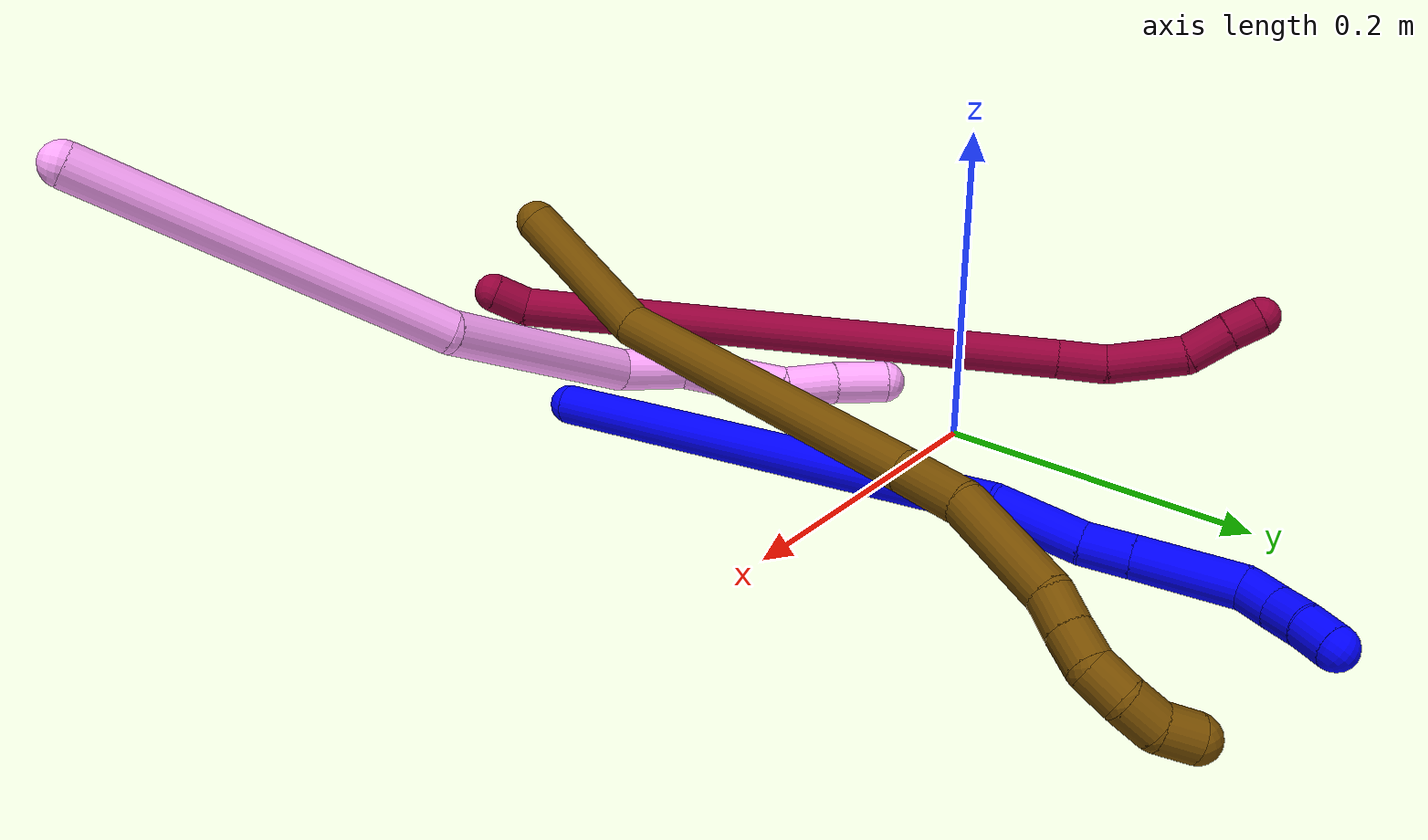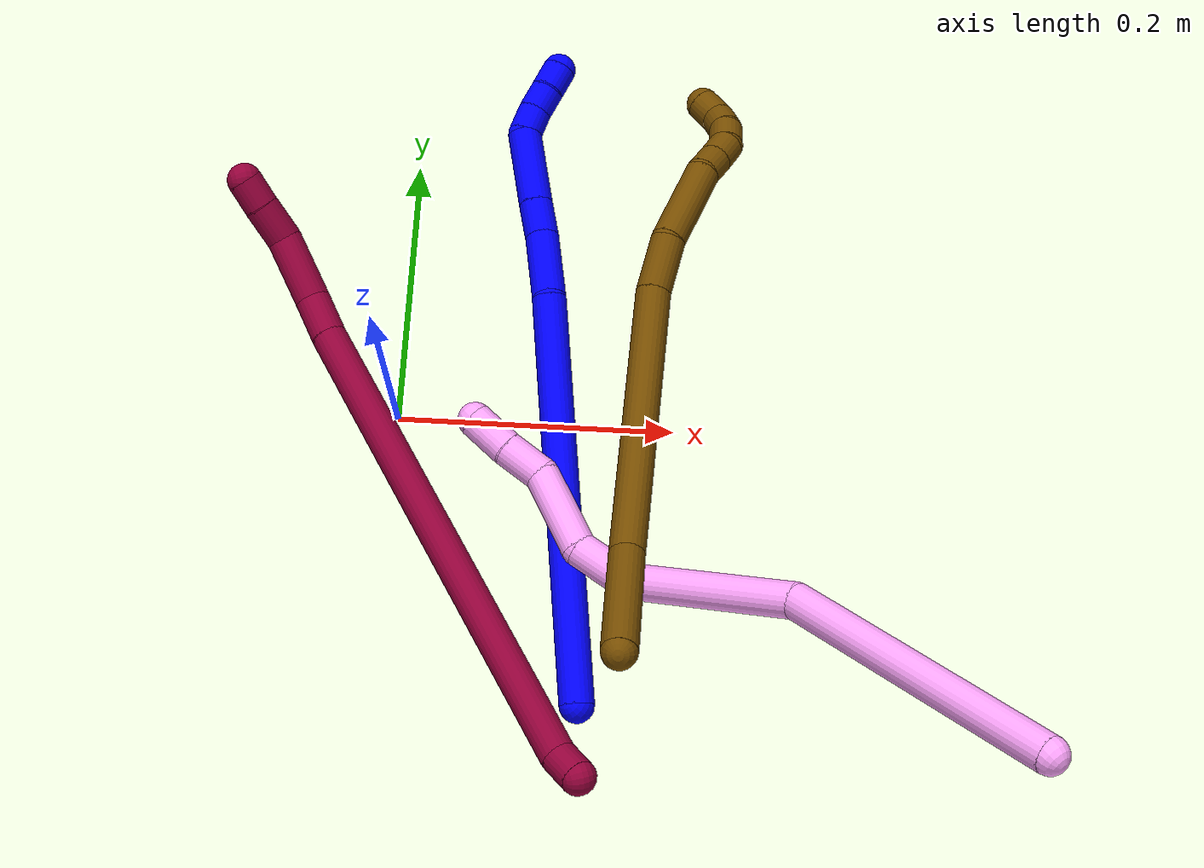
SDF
<sdf version="1.7">
 <world name="default">
  <model name="1">
   <static>0</static>
   <link name="1">
    <collision name="collision-cylinder-e_1_1_4">
     <pose>-0.010685 0.138524 0.053815 -1.20025 -0.071778 0.049131</pose>
     <geometry><cylinder><radius>0.0125</radius><length>0.297988</length></cylinder></geometry>
     <surface>
      <friction><ode><mu>1.16</mu><mu2>1.16</mu2><slip1>0</slip1><slip2>0</slip2></ode></friction>
      <contact><ode><kp>1e+06</kp><kd>1</kd><max_vel>0</max_vel><min_depth>0.001</min_depth></ode></contact>
     </surface>
    </collision>
    <visual name="visual-cylinder-e_1_1_4">
     <pose>-0.010685 0.138524 0.053815 -1.20025 -0.071778 0.049131</pose>
     <geometry><cylinder><radius>0.0125</radius><length>0.297988</length></cylinder></geometry>
     <material><ambient>0 0 1 1</ambient></material>
    </visual>
    <collision name="collision-cylinder-e_2_4_5">
     <pose>-0.028234 0.302096 0.113289 -1.34861 -0.261158 0.209169</pose>
     <geometry><cylinder><radius>0.0125</radius><length>0.053158</length></cylinder></geometry>
     <surface>
      <friction><ode><mu>1.16</mu><mu2>1.16</mu2><slip1>0</slip1><slip2>0</slip2></ode></friction>
      <contact><ode><kp>1e+06</kp><kd>1</kd><max_vel>0</max_vel><min_depth>0.001</min_depth></ode></contact>
     </surface>
    </collision>
    <visual name="visual-cylinder-e_2_4_5">
     <pose>-0.028234 0.302096 0.113289 -1.34861 -0.261158 0.209169</pose>
     <geometry><cylinder><radius>0.0125</radius><length>0.053158</length></cylinder></geometry>
     <material><ambient>0 0 1 1</ambient></material>
    </visual>
    <collision name="collision-cylinder-e_3_5_6">
     <pose>-0.038031 0.339903 0.123998 -1.19392 -0.210681 0.143481</pose>
     <geometry><cylinder><radius>0.0125</radius><length>0.028069</length></cylinder></geometry>
     <surface>
      <friction><ode><mu>1.16</mu><mu2>1.16</mu2><slip1>0</slip1><slip2>0</slip2></ode></friction>
      <contact><ode><kp>1e+06</kp><kd>1</kd><max_vel>0</max_vel><min_depth>0.001</min_depth></ode></contact>
     </surface>
    </collision>
    <visual name="visual-cylinder-e_3_5_6">
     <pose>-0.038031 0.339903 0.123998 -1.19392 -0.210681 0.143481</pose>
     <geometry><cylinder><radius>0.0125</radius><length>0.028069</length></cylinder></geometry>
     <material><ambient>0 0 1 1</ambient></material>
    </visual>
    <collision name="collision-cylinder-e_4_6_7">
     <pose>-0.046683 0.380058 0.13945 -1.20792 -0.192671 0.133153</pose>
     <geometry><cylinder><radius>0.0125</radius><length>0.059708</length></cylinder></geometry>
     <surface>
      <friction><ode><mu>1.16</mu><mu2>1.16</mu2><slip1>0</slip1><slip2>0</slip2></ode></friction>
      <contact><ode><kp>1e+06</kp><kd>1</kd><max_vel>0</max_vel><min_depth>0.001</min_depth></ode></contact>
     </surface>
    </collision>
    <visual name="visual-cylinder-e_4_6_7">
     <pose>-0.046683 0.380058 0.13945 -1.20792 -0.192671 0.133153</pose>
     <geometry><cylinder><radius>0.0125</radius><length>0.059708</length></cylinder></geometry>
     <material><ambient>0 0 1 1</ambient></material>
    </visual>
    <collision name="collision-cylinder-e_5_7_8">
     <pose>-0.050781 0.417862 0.149858 -1.57014 0.154168 -0.154067</pose>
     <geometry><cylinder><radius>0.0125</radius><length>0.02107</length></cylinder></geometry>
     <surface>
      <friction><ode><mu>1.16</mu><mu2>1.16</mu2><slip1>0</slip1><slip2>0</slip2></ode></friction>
      <contact><ode><kp>1e+06</kp><kd>1</kd><max_vel>0</max_vel><min_depth>0.001</min_depth></ode></contact>
     </surface>
    </collision>
    <visual name="visual-cylinder-e_5_7_8">
     <pose>-0.050781 0.417862 0.149858 -1.57014 0.154168 -0.154067</pose>
     <geometry><cylinder><radius>0.0125</radius><length>0.02107</length></cylinder></geometry>
     <material><ambient>0 0 1 1</ambient></material>
    </visual>
    <collision name="collision-cylinder-e_6_8_9">
     <pose>-0.04566 0.437638 0.149803 -1.57741 0.357938 -0.360262</pose>
     <geometry><cylinder><radius>0.0125</radius><length>0.020001</length></cylinder></geometry>
     <surface>
      <friction><ode><mu>1.16</mu><mu2>1.16</mu2><slip1>0</slip1><slip2>0</slip2></ode></friction>
      <contact><ode><kp>1e+06</kp><kd>1</kd><max_vel>0</max_vel><min_depth>0.001</min_depth></ode></contact>
     </surface>
    </collision>
    <visual name="visual-cylinder-e_6_8_9">
     <pose>-0.04566 0.437638 0.149803 -1.57741 0.357938 -0.360262</pose>
     <geometry><cylinder><radius>0.0125</radius><length>0.020001</length></cylinder></geometry>
     <material><ambient>0 0 1 1</ambient></material>
    </visual>
    <collision name="collision-cylinder-e_7_9_2">
     <pose>-0.039673 0.456669 0.149053 -1.64185 0.250917 -0.269196</pose>
     <geometry><cylinder><radius>0.0125</radius><length>0.020005</length></cylinder></geometry>
     <surface>
      <friction><ode><mu>1.16</mu><mu2>1.16</mu2><slip1>0</slip1><slip2>0</slip2></ode></friction>
      <contact><ode><kp>1e+06</kp><kd>1</kd><max_vel>0</max_vel><min_depth>0.001</min_depth></ode></contact>
     </surface>
    </collision>
    <visual name="visual-cylinder-e_7_9_2">
     <pose>-0.039673 0.456669 0.149053 -1.64185 0.250917 -0.269196</pose>
     <geometry><cylinder><radius>0.0125</radius><length>0.020005</length></cylinder></geometry>
     <material><ambient>0 0 1 1</ambient></material>
    </visual>
    <collision name="collision-sphere-2">
     <pose>-0.037189 0.466334 0.148365 0 -0 0</pose>
     <geometry><sphere><radius>0.0125</radius></sphere></geometry>
     <surface>
      <friction><ode><mu>1.16</mu><mu2>1.16</mu2><slip1>0</slip1><slip2>0</slip2></ode></friction>
      <contact><ode><kp>1e+06</kp><kd>1</kd><max_vel>0</max_vel><min_depth>0.001</min_depth></ode></contact>
     </surface>
    </collision>
    <visual name="visual-sphere-2">
     <pose>-0.037189 0.466334 0.148365 0 -0 0</pose>
     <geometry><sphere><radius>0.0125</radius></sphere></geometry>
     <material><ambient>0 0 1 1</ambient></material>
    </visual>
    <collision name="collision-sphere-9">
     <pose>-0.042157 0.447004 0.149741 0 -0 0</pose>
     <geometry><sphere><radius>0.0125</radius></sphere></geometry>
     <surface>
      <friction><ode><mu>1.16</mu><mu2>1.16</mu2><slip1>0</slip1><slip2>0</slip2></ode></friction>
      <contact><ode><kp>1e+06</kp><kd>1</kd><max_vel>0</max_vel><min_depth>0.001</min_depth></ode></contact>
     </surface>
    </collision>
    <visual name="visual-sphere-9">
     <pose>-0.042157 0.447004 0.149741 0 -0 0</pose>
     <geometry><sphere><radius>0.0125</radius></sphere></geometry>
     <material><ambient>0 0 1 1</ambient></material>
    </visual>
    <collision name="collision-sphere-4">
     <pose>-0.021371 0.277049 0.107631 0 -0 0</pose>
     <geometry><sphere><radius>0.0125</radius></sphere></geometry>
     <surface>
      <friction><ode><mu>1.16</mu><mu2>1.16</mu2><slip1>0</slip1><slip2>0</slip2></ode></friction>
      <contact><ode><kp>1e+06</kp><kd>1</kd><max_vel>0</max_vel><min_depth>0.001</min_depth></ode></contact>
     </surface>
    </collision>
    <visual name="visual-sphere-4">
     <pose>-0.021371 0.277049 0.107631 0 -0 0</pose>
     <geometry><sphere><radius>0.0125</radius></sphere></geometry>
     <material><ambient>0 0 1 1</ambient></material>
    </visual>
    <collision name="collision-sphere-1">
     <geometry><sphere><radius>0.0125</radius></sphere></geometry>
     <surface>
      <friction><ode><mu>1.16</mu><mu2>1.16</mu2><slip1>0</slip1><slip2>0</slip2></ode></friction>
      <contact><ode><kp>1e+06</kp><kd>1</kd><max_vel>0</max_vel><min_depth>0.001</min_depth></ode></contact>
     </surface>
    </collision>
    <visual name="visual-sphere-1">
     <geometry><sphere><radius>0.0125</radius></sphere></geometry>
     <material><ambient>0 0 1 1</ambient></material>
    </visual>
    <collision name="collision-sphere-8">
     <pose>-0.049164 0.428272 0.149865 0 -0 0</pose>
     <geometry><sphere><radius>0.0125</radius></sphere></geometry>
     <surface>
      <friction><ode><mu>1.16</mu><mu2>1.16</mu2><slip1>0</slip1><slip2>0</slip2></ode></friction>
      <contact><ode><kp>1e+06</kp><kd>1</kd><max_vel>0</max_vel><min_depth>0.001</min_depth></ode></contact>
     </surface>
    </collision>
    <visual name="visual-sphere-8">
     <pose>-0.049164 0.428272 0.149865 0 -0 0</pose>
     <geometry><sphere><radius>0.0125</radius></sphere></geometry>
     <material><ambient>0 0 1 1</ambient></material>
    </visual>
    <collision name="collision-sphere-5">
     <pose>-0.035096 0.327142 0.118947 0 -0 0</pose>
     <geometry><sphere><radius>0.0125</radius></sphere></geometry>
     <surface>
      <friction><ode><mu>1.16</mu><mu2>1.16</mu2><slip1>0</slip1><slip2>0</slip2></ode></friction>
      <contact><ode><kp>1e+06</kp><kd>1</kd><max_vel>0</max_vel><min_depth>0.001</min_depth></ode></contact>
     </surface>
    </collision>
    <visual name="visual-sphere-5">
     <pose>-0.035096 0.327142 0.118947 0 -0 0</pose>
     <geometry><sphere><radius>0.0125</radius></sphere></geometry>
     <material><ambient>0 0 1 1</ambient></material>
    </visual>
    <collision name="collision-sphere-6">
     <pose>-0.040966 0.352664 0.129049 0 -0 0</pose>
     <geometry><sphere><radius>0.0125</radius></sphere></geometry>
     <surface>
      <friction><ode><mu>1.16</mu><mu2>1.16</mu2><slip1>0</slip1><slip2>0</slip2></ode></friction>
      <contact><ode><kp>1e+06</kp><kd>1</kd><max_vel>0</max_vel><min_depth>0.001</min_depth></ode></contact>
     </surface>
    </collision>
    <visual name="visual-sphere-6">
     <pose>-0.040966 0.352664 0.129049 0 -0 0</pose>
     <geometry><sphere><radius>0.0125</radius></sphere></geometry>
     <material><ambient>0 0 1 1</ambient></material>
    </visual>
    <collision name="collision-sphere-7">
     <pose>-0.052399 0.407451 0.149851 0 -0 0</pose>
     <geometry><sphere><radius>0.0125</radius></sphere></geometry>
     <surface>
      <friction><ode><mu>1.16</mu><mu2>1.16</mu2><slip1>0</slip1><slip2>0</slip2></ode></friction>
      <contact><ode><kp>1e+06</kp><kd>1</kd><max_vel>0</max_vel><min_depth>0.001</min_depth></ode></contact>
     </surface>
    </collision>
    <visual name="visual-sphere-7">
     <pose>-0.052399 0.407451 0.149851 0 -0 0</pose>
     <geometry><sphere><radius>0.0125</radius></sphere></geometry>
     <material><ambient>0 0 1 1</ambient></material>
    </visual>
    <inertial>
     <pose>-0.022633 0.232528 0.086002 0 -0 0</pose>
     <mass>0.5</mass>
     <inertia>
      <ixx>0.002359</ixx>
      <ixy>0</ixy>
      <ixz>0</ixz>
      <iyy>0.000972</iyy>
      <iyz>0</iyz>
      <izz>-0.001922</izz>
     </inertia>
    </inertial>
   </link>
   <pose>0.142329 -0.205212 0.011491 -0.236691 -0.744035 -0.017679</pose>
  </model>
  <model name="4">
   <static>0</static>
   <link name="4">
    <collision name="collision-cylinder-e_1_1_4">
     <pose>-0.02856 -0.010671 -0.100435 3.03574 -0.27558 -2.41178</pose>
     <geometry><cylinder><radius>0.0125</radius><length>0.209922</length></cylinder></geometry>
     <surface>
      <friction><ode><mu>1.16</mu><mu2>1.16</mu2><slip1>0</slip1><slip2>0</slip2></ode></friction>
      <contact><ode><kp>1e+06</kp><kd>1</kd><max_vel>0</max_vel><min_depth>0.001</min_depth></ode></contact>
     </surface>
    </collision>
    <visual name="visual-cylinder-e_1_1_4">
     <pose>-0.02856 -0.010671 -0.100435 3.03574 -0.27558 -2.41178</pose>
     <geometry><cylinder><radius>0.0125</radius><length>0.209922</length></cylinder></geometry>
     <material><ambient>1 0.65098 0.996078 1</ambient></material>
    </visual>
    <collision name="collision-cylinder-e_2_4_5">
     <pose>-0.09325 -0.012881 -0.251097 -2.97471 -0.616965 2.62824</pose>
     <geometry><cylinder><radius>0.0125</radius><length>0.124894</length></cylinder></geometry>
     <surface>
      <friction><ode><mu>1.16</mu><mu2>1.16</mu2><slip1>0</slip1><slip2>0</slip2></ode></friction>
      <contact><ode><kp>1e+06</kp><kd>1</kd><max_vel>0</max_vel><min_depth>0.001</min_depth></ode></contact>
     </surface>
    </collision>
    <visual name="visual-cylinder-e_2_4_5">
     <pose>-0.09325 -0.012881 -0.251097 -2.97471 -0.616965 2.62824</pose>
     <geometry><cylinder><radius>0.0125</radius><length>0.124894</length></cylinder></geometry>
     <material><ambient>1 0.65098 0.996078 1</ambient></material>
    </visual>
    <collision name="collision-cylinder-e_3_5_6">
     <pose>-0.13207 0.001736 -0.320558 -2.83183 -0.132438 0.803311</pose>
     <geometry><cylinder><radius>0.0125</radius><length>0.040748</length></cylinder></geometry>
     <surface>
      <friction><ode><mu>1.16</mu><mu2>1.16</mu2><slip1>0</slip1><slip2>0</slip2></ode></friction>
      <contact><ode><kp>1e+06</kp><kd>1</kd><max_vel>0</max_vel><min_depth>0.001</min_depth></ode></contact>
     </surface>
    </collision>
    <visual name="visual-cylinder-e_3_5_6">
     <pose>-0.13207 0.001736 -0.320558 -2.83183 -0.132438 0.803311</pose>
     <geometry><cylinder><radius>0.0125</radius><length>0.040748</length></cylinder></geometry>
     <material><ambient>1 0.65098 0.996078 1</ambient></material>
    </visual>
    <collision name="collision-cylinder-e_4_6_7">
     <pose>-0.126564 0.008329 -0.369463 -3.12689 0.269516 -3.03324</pose>
     <geometry><cylinder><radius>0.0125</radius><length>0.061569</length></cylinder></geometry>
     <surface>
      <friction><ode><mu>1.16</mu><mu2>1.16</mu2><slip1>0</slip1><slip2>0</slip2></ode></friction>
      <contact><ode><kp>1e+06</kp><kd>1</kd><max_vel>0</max_vel><min_depth>0.001</min_depth></ode></contact>
     </surface>
    </collision>
    <visual name="visual-cylinder-e_4_6_7">
     <pose>-0.126564 0.008329 -0.369463 -3.12689 0.269516 -3.03324</pose>
     <geometry><cylinder><radius>0.0125</radius><length>0.061569</length></cylinder></geometry>
     <material><ambient>1 0.65098 0.996078 1</ambient></material>
    </visual>
    <collision name="collision-cylinder-e_5_7_8">
     <pose>-0.119174 0.014376 -0.41354 -2.77022 -0.052138 0.275849</pose>
     <geometry><cylinder><radius>0.0125</radius><length>0.030964</length></cylinder></geometry>
     <surface>
      <friction><ode><mu>1.16</mu><mu2>1.16</mu2><slip1>0</slip1><slip2>0</slip2></ode></friction>
      <contact><ode><kp>1e+06</kp><kd>1</kd><max_vel>0</max_vel><min_depth>0.001</min_depth></ode></contact>
     </surface>
    </collision>
    <visual name="visual-cylinder-e_5_7_8">
     <pose>-0.119174 0.014376 -0.41354 -2.77022 -0.052138 0.275849</pose>
     <geometry><cylinder><radius>0.0125</radius><length>0.030964</length></cylinder></geometry>
     <material><ambient>1 0.65098 0.996078 1</ambient></material>
    </visual>
    <collision name="collision-cylinder-e_6_8_2">
     <pose>-0.119777 0.024454 -0.443258 -2.85768 0.012791 -0.089439</pose>
     <geometry><cylinder><radius>0.0125</radius><length>0.031902</length></cylinder></geometry>
     <surface>
      <friction><ode><mu>1.16</mu><mu2>1.16</mu2><slip1>0</slip1><slip2>0</slip2></ode></friction>
      <contact><ode><kp>1e+06</kp><kd>1</kd><max_vel>0</max_vel><min_depth>0.001</min_depth></ode></contact>
     </surface>
    </collision>
    <visual name="visual-cylinder-e_6_8_2">
     <pose>-0.119777 0.024454 -0.443258 -2.85768 0.012791 -0.089439</pose>
     <geometry><cylinder><radius>0.0125</radius><length>0.031902</length></cylinder></geometry>
     <material><ambient>1 0.65098 0.996078 1</ambient></material>
    </visual>
    <collision name="collision-sphere-2">
     <pose>-0.119573 0.028922 -0.45857 0 -0 0</pose>
     <geometry><sphere><radius>0.0125</radius></sphere></geometry>
     <surface>
      <friction><ode><mu>1.16</mu><mu2>1.16</mu2><slip1>0</slip1><slip2>0</slip2></ode></friction>
      <contact><ode><kp>1e+06</kp><kd>1</kd><max_vel>0</max_vel><min_depth>0.001</min_depth></ode></contact>
     </surface>
    </collision>
    <visual name="visual-sphere-2">
     <pose>-0.119573 0.028922 -0.45857 0 -0 0</pose>
     <geometry><sphere><radius>0.0125</radius></sphere></geometry>
     <material><ambient>1 0.65098 0.996078 1</ambient></material>
    </visual>
    <collision name="collision-sphere-4">
     <pose>-0.057121 -0.021342 -0.200871 0 -0 0</pose>
     <geometry><sphere><radius>0.0125</radius></sphere></geometry>
     <surface>
      <friction><ode><mu>1.16</mu><mu2>1.16</mu2><slip1>0</slip1><slip2>0</slip2></ode></friction>
      <contact><ode><kp>1e+06</kp><kd>1</kd><max_vel>0</max_vel><min_depth>0.001</min_depth></ode></contact>
     </surface>
    </collision>
    <visual name="visual-sphere-4">
     <pose>-0.057121 -0.021342 -0.200871 0 -0 0</pose>
     <geometry><sphere><radius>0.0125</radius></sphere></geometry>
     <material><ambient>1 0.65098 0.996078 1</ambient></material>
    </visual>
    <collision name="collision-sphere-1">
     <geometry><sphere><radius>0.0125</radius></sphere></geometry>
     <surface>
      <friction><ode><mu>1.16</mu><mu2>1.16</mu2><slip1>0</slip1><slip2>0</slip2></ode></friction>
      <contact><ode><kp>1e+06</kp><kd>1</kd><max_vel>0</max_vel><min_depth>0.001</min_depth></ode></contact>
     </surface>
    </collision>
    <visual name="visual-sphere-1">
     <geometry><sphere><radius>0.0125</radius></sphere></geometry>
     <material><ambient>1 0.65098 0.996078 1</ambient></material>
    </visual>
    <collision name="collision-sphere-8">
     <pose>-0.119981 0.019986 -0.427947 0 -0 0</pose>
     <geometry><sphere><radius>0.0125</radius></sphere></geometry>
     <surface>
      <friction><ode><mu>1.16</mu><mu2>1.16</mu2><slip1>0</slip1><slip2>0</slip2></ode></friction>
      <contact><ode><kp>1e+06</kp><kd>1</kd><max_vel>0</max_vel><min_depth>0.001</min_depth></ode></contact>
     </surface>
    </collision>
    <visual name="visual-sphere-8">
     <pose>-0.119981 0.019986 -0.427947 0 -0 0</pose>
     <geometry><sphere><radius>0.0125</radius></sphere></geometry>
     <material><ambient>1 0.65098 0.996078 1</ambient></material>
    </visual>
    <collision name="collision-sphere-5">
     <pose>-0.12938 -0.00442 -0.301324 0 -0 0</pose>
     <geometry><sphere><radius>0.0125</radius></sphere></geometry>
     <surface>
      <friction><ode><mu>1.16</mu><mu2>1.16</mu2><slip1>0</slip1><slip2>0</slip2></ode></friction>
      <contact><ode><kp>1e+06</kp><kd>1</kd><max_vel>0</max_vel><min_depth>0.001</min_depth></ode></contact>
     </surface>
    </collision>
    <visual name="visual-sphere-5">
     <pose>-0.12938 -0.00442 -0.301324 0 -0 0</pose>
     <geometry><sphere><radius>0.0125</radius></sphere></geometry>
     <material><ambient>1 0.65098 0.996078 1</ambient></material>
    </visual>
    <collision name="collision-sphere-6">
     <pose>-0.134761 0.007892 -0.339793 0 -0 0</pose>
     <geometry><sphere><radius>0.0125</radius></sphere></geometry>
     <surface>
      <friction><ode><mu>1.16</mu><mu2>1.16</mu2><slip1>0</slip1><slip2>0</slip2></ode></friction>
      <contact><ode><kp>1e+06</kp><kd>1</kd><max_vel>0</max_vel><min_depth>0.001</min_depth></ode></contact>
     </surface>
    </collision>
    <visual name="visual-sphere-6">
     <pose>-0.134761 0.007892 -0.339793 0 -0 0</pose>
     <geometry><sphere><radius>0.0125</radius></sphere></geometry>
     <material><ambient>1 0.65098 0.996078 1</ambient></material>
    </visual>
    <collision name="collision-sphere-7">
     <pose>-0.118367 0.008765 -0.399133 0 -0 0</pose>
     <geometry><sphere><radius>0.0125</radius></sphere></geometry>
     <surface>
      <friction><ode><mu>1.16</mu><mu2>1.16</mu2><slip1>0</slip1><slip2>0</slip2></ode></friction>
      <contact><ode><kp>1e+06</kp><kd>1</kd><max_vel>0</max_vel><min_depth>0.001</min_depth></ode></contact>
     </surface>
    </collision>
    <visual name="visual-sphere-7">
     <pose>-0.118367 0.008765 -0.399133 0 -0 0</pose>
     <geometry><sphere><radius>0.0125</radius></sphere></geometry>
     <material><ambient>1 0.65098 0.996078 1</ambient></material>
    </visual>
    <inertial>
     <pose>-0.076654 -0.00408 -0.230399 0 -0 0</pose>
     <mass>0.5</mass>
     <inertia>
      <ixx>-0.001125</ixx>
      <ixy>0</ixy>
      <ixz>0</ixz>
      <iyy>0.000327</iyy>
      <iyz>0</iyz>
      <izz>0.00032</izz>
     </inertia>
    </inertial>
   </link>
   <pose>0.423929 -0.264028 0.232875 1.20919 -0.574379 0.910595</pose>
  </model>
  <model name="8">
   <static>0</static>
   <link name="8">
    <collision name="collision-cylinder-e_1_1_4">
     <pose>-0.000722 0.011332 -0.002665 -1.80177 -0.061938 0.078179</pose>
     <geometry><cylinder><radius>0.0125</radius><length>0.023328</length></cylinder></geometry>
     <surface>
      <friction><ode><mu>1.16</mu><mu2>1.16</mu2><slip1>0</slip1><slip2>0</slip2></ode></friction>
      <contact><ode><kp>1e+06</kp><kd>1</kd><max_vel>0</max_vel><min_depth>0.001</min_depth></ode></contact>
     </surface>
    </collision>
    <visual name="visual-cylinder-e_1_1_4">
     <pose>-0.000722 0.011332 -0.002665 -1.80177 -0.061938 0.078179</pose>
     <geometry><cylinder><radius>0.0125</radius><length>0.023328</length></cylinder></geometry>
     <material><ambient>0.584314 0 0.227451 1</ambient></material>
    </visual>
    <collision name="collision-cylinder-e_2_4_5">
     <pose>-0.088695 0.168476 -0.037538 -1.7882 -0.528793 0.650208</pose>
     <geometry><cylinder><radius>0.0125</radius><length>0.345896</length></cylinder></geometry>
     <surface>
      <friction><ode><mu>1.16</mu><mu2>1.16</mu2><slip1>0</slip1><slip2>0</slip2></ode></friction>
      <contact><ode><kp>1e+06</kp><kd>1</kd><max_vel>0</max_vel><min_depth>0.001</min_depth></ode></contact>
     </surface>
    </collision>
    <visual name="visual-cylinder-e_2_4_5">
     <pose>-0.088695 0.168476 -0.037538 -1.7882 -0.528793 0.650208</pose>
     <geometry><cylinder><radius>0.0125</radius><length>0.345896</length></cylinder></geometry>
     <material><ambient>0.584314 0 0.227451 1</ambient></material>
    </visual>
    <collision name="collision-cylinder-e_3_5_6">
     <pose>-0.184325 0.327286 -0.071655 -1.71657 -0.567755 0.651384</pose>
     <geometry><cylinder><radius>0.0125</radius><length>0.031165</length></cylinder></geometry>
     <surface>
      <friction><ode><mu>1.16</mu><mu2>1.16</mu2><slip1>0</slip1><slip2>0</slip2></ode></friction>
      <contact><ode><kp>1e+06</kp><kd>1</kd><max_vel>0</max_vel><min_depth>0.001</min_depth></ode></contact>
     </surface>
    </collision>
    <visual name="visual-cylinder-e_3_5_6">
     <pose>-0.184325 0.327286 -0.071655 -1.71657 -0.567755 0.651384</pose>
     <geometry><cylinder><radius>0.0125</radius><length>0.031165</length></cylinder></geometry>
     <material><ambient>0.584314 0 0.227451 1</ambient></material>
    </visual>
    <collision name="collision-cylinder-e_4_6_7">
     <pose>-0.210167 0.356907 -0.07853 -1.86112 -0.788663 1.01888</pose>
     <geometry><cylinder><radius>0.0125</radius><length>0.049231</length></cylinder></geometry>
     <surface>
      <friction><ode><mu>1.16</mu><mu2>1.16</mu2><slip1>0</slip1><slip2>0</slip2></ode></friction>
      <contact><ode><kp>1e+06</kp><kd>1</kd><max_vel>0</max_vel><min_depth>0.001</min_depth></ode></contact>
     </surface>
    </collision>
    <visual name="visual-cylinder-e_4_6_7">
     <pose>-0.210167 0.356907 -0.07853 -1.86112 -0.788663 1.01888</pose>
     <geometry><cylinder><radius>0.0125</radius><length>0.049231</length></cylinder></geometry>
     <material><ambient>0.584314 0 0.227451 1</ambient></material>
    </visual>
    <collision name="collision-cylinder-e_5_7_8">
     <pose>-0.239463 0.378831 -0.089792 -2.44177 -0.963029 1.92232</pose>
     <geometry><cylinder><radius>0.0125</radius><length>0.02883</length></cylinder></geometry>
     <surface>
      <friction><ode><mu>1.16</mu><mu2>1.16</mu2><slip1>0</slip1><slip2>0</slip2></ode></friction>
      <contact><ode><kp>1e+06</kp><kd>1</kd><max_vel>0</max_vel><min_depth>0.001</min_depth></ode></contact>
     </surface>
    </collision>
    <visual name="visual-cylinder-e_5_7_8">
     <pose>-0.239463 0.378831 -0.089792 -2.44177 -0.963029 1.92232</pose>
     <geometry><cylinder><radius>0.0125</radius><length>0.02883</length></cylinder></geometry>
     <material><ambient>0.584314 0 0.227451 1</ambient></material>
    </visual>
    <collision name="collision-cylinder-e_6_8_2">
     <pose>-0.260077 0.38874 -0.100305 -2.31189 -0.952616 1.72839</pose>
     <geometry><cylinder><radius>0.0125</radius><length>0.021551</length></cylinder></geometry>
     <surface>
      <friction><ode><mu>1.16</mu><mu2>1.16</mu2><slip1>0</slip1><slip2>0</slip2></ode></friction>
      <contact><ode><kp>1e+06</kp><kd>1</kd><max_vel>0</max_vel><min_depth>0.001</min_depth></ode></contact>
     </surface>
    </collision>
    <visual name="visual-cylinder-e_6_8_2">
     <pose>-0.260077 0.38874 -0.100305 -2.31189 -0.952616 1.72839</pose>
     <geometry><cylinder><radius>0.0125</radius><length>0.021551</length></cylinder></geometry>
     <material><ambient>0.584314 0 0.227451 1</ambient></material>
    </visual>
    <collision name="collision-sphere-2">
     <pose>-0.268859 0.393347 -0.104521 0 -0 0</pose>
     <geometry><sphere><radius>0.0125</radius></sphere></geometry>
     <surface>
      <friction><ode><mu>1.16</mu><mu2>1.16</mu2><slip1>0</slip1><slip2>0</slip2></ode></friction>
      <contact><ode><kp>1e+06</kp><kd>1</kd><max_vel>0</max_vel><min_depth>0.001</min_depth></ode></contact>
     </surface>
    </collision>
    <visual name="visual-sphere-2">
     <pose>-0.268859 0.393347 -0.104521 0 -0 0</pose>
     <geometry><sphere><radius>0.0125</radius></sphere></geometry>
     <material><ambient>0.584314 0 0.227451 1</ambient></material>
    </visual>
    <collision name="collision-sphere-4">
     <pose>-0.001444 0.022665 -0.00533 0 -0 0</pose>
     <geometry><sphere><radius>0.0125</radius></sphere></geometry>
     <surface>
      <friction><ode><mu>1.16</mu><mu2>1.16</mu2><slip1>0</slip1><slip2>0</slip2></ode></friction>
      <contact><ode><kp>1e+06</kp><kd>1</kd><max_vel>0</max_vel><min_depth>0.001</min_depth></ode></contact>
     </surface>
    </collision>
    <visual name="visual-sphere-4">
     <pose>-0.001444 0.022665 -0.00533 0 -0 0</pose>
     <geometry><sphere><radius>0.0125</radius></sphere></geometry>
     <material><ambient>0.584314 0 0.227451 1</ambient></material>
    </visual>
    <collision name="collision-sphere-1">
     <geometry><sphere><radius>0.0125</radius></sphere></geometry>
     <surface>
      <friction><ode><mu>1.16</mu><mu2>1.16</mu2><slip1>0</slip1><slip2>0</slip2></ode></friction>
      <contact><ode><kp>1e+06</kp><kd>1</kd><max_vel>0</max_vel><min_depth>0.001</min_depth></ode></contact>
     </surface>
    </collision>
    <visual name="visual-sphere-1">
     <geometry><sphere><radius>0.0125</radius></sphere></geometry>
     <material><ambient>0.584314 0 0.227451 1</ambient></material>
    </visual>
    <collision name="collision-sphere-8">
     <pose>-0.251296 0.384133 -0.096089 0 -0 0</pose>
     <geometry><sphere><radius>0.0125</radius></sphere></geometry>
     <surface>
      <friction><ode><mu>1.16</mu><mu2>1.16</mu2><slip1>0</slip1><slip2>0</slip2></ode></friction>
      <contact><ode><kp>1e+06</kp><kd>1</kd><max_vel>0</max_vel><min_depth>0.001</min_depth></ode></contact>
     </surface>
    </collision>
    <visual name="visual-sphere-8">
     <pose>-0.251296 0.384133 -0.096089 0 -0 0</pose>
     <geometry><sphere><radius>0.0125</radius></sphere></geometry>
     <material><ambient>0.584314 0 0.227451 1</ambient></material>
    </visual>
    <collision name="collision-sphere-5">
     <pose>-0.175946 0.314287 -0.069747 0 -0 0</pose>
     <geometry><sphere><radius>0.0125</radius></sphere></geometry>
     <surface>
      <friction><ode><mu>1.16</mu><mu2>1.16</mu2><slip1>0</slip1><slip2>0</slip2></ode></friction>
      <contact><ode><kp>1e+06</kp><kd>1</kd><max_vel>0</max_vel><min_depth>0.001</min_depth></ode></contact>
     </surface>
    </collision>
    <visual name="visual-sphere-5">
     <pose>-0.175946 0.314287 -0.069747 0 -0 0</pose>
     <geometry><sphere><radius>0.0125</radius></sphere></geometry>
     <material><ambient>0.584314 0 0.227451 1</ambient></material>
    </visual>
    <collision name="collision-sphere-6">
     <pose>-0.192704 0.340284 -0.073563 0 -0 0</pose>
     <geometry><sphere><radius>0.0125</radius></sphere></geometry>
     <surface>
      <friction><ode><mu>1.16</mu><mu2>1.16</mu2><slip1>0</slip1><slip2>0</slip2></ode></friction>
      <contact><ode><kp>1e+06</kp><kd>1</kd><max_vel>0</max_vel><min_depth>0.001</min_depth></ode></contact>
     </surface>
    </collision>
    <visual name="visual-sphere-6">
     <pose>-0.192704 0.340284 -0.073563 0 -0 0</pose>
     <geometry><sphere><radius>0.0125</radius></sphere></geometry>
     <material><ambient>0.584314 0 0.227451 1</ambient></material>
    </visual>
    <collision name="collision-sphere-7">
     <pose>-0.227629 0.37353 -0.083496 0 -0 0</pose>
     <geometry><sphere><radius>0.0125</radius></sphere></geometry>
     <surface>
      <friction><ode><mu>1.16</mu><mu2>1.16</mu2><slip1>0</slip1><slip2>0</slip2></ode></friction>
      <contact><ode><kp>1e+06</kp><kd>1</kd><max_vel>0</max_vel><min_depth>0.001</min_depth></ode></contact>
     </surface>
    </collision>
    <visual name="visual-sphere-7">
     <pose>-0.227629 0.37353 -0.083496 0 -0 0</pose>
     <geometry><sphere><radius>0.0125</radius></sphere></geometry>
     <material><ambient>0.584314 0 0.227451 1</ambient></material>
    </visual>
    <inertial>
     <pose>-0.118591 0.211219 -0.047792 0 -0 0</pose>
     <mass>0.5</mass>
     <inertia>
      <ixx>0.004188</ixx>
      <ixy>0</ixy>
      <ixz>0</ixz>
      <iyy>0.002299</iyy>
      <iyz>0</iyz>
      <izz>-0.001181</izz>
     </inertia>
    </inertial>
   </link>
   <pose>0.14757 -0.265142 0.076394 -1.9615 0.892545 -1.53169</pose>
  </model>
  <model name="12">
   <static>0</static>
   <link name="12">
    <collision name="collision-cylinder-e_1_1_4">
     <pose>-0.001961 0.023528 -0.038125 -2.58867 -0.043747 0.153906</pose>
     <geometry><cylinder><radius>0.0125</radius><length>0.089686</length></cylinder></geometry>
     <surface>
      <friction><ode><mu>1.16</mu><mu2>1.16</mu2><slip1>0</slip1><slip2>0</slip2></ode></friction>
      <contact><ode><kp>1e+06</kp><kd>1</kd><max_vel>0</max_vel><min_depth>0.001</min_depth></ode></contact>
     </surface>
    </collision>
    <visual name="visual-cylinder-e_1_1_4">
     <pose>-0.001961 0.023528 -0.038125 -2.58867 -0.043747 0.153906</pose>
     <geometry><cylinder><radius>0.0125</radius><length>0.089686</length></cylinder></geometry>
     <material><ambient>0.466667 0.301961 0 1</ambient></material>
    </visual>
    <collision name="collision-cylinder-e_2_4_5">
     <pose>-0.004797 0.129359 -0.132779 -2.17264 -0.008762 0.016648</pose>
     <geometry><cylinder><radius>0.0125</radius><length>0.199701</length></cylinder></geometry>
     <surface>
      <friction><ode><mu>1.16</mu><mu2>1.16</mu2><slip1>0</slip1><slip2>0</slip2></ode></friction>
      <contact><ode><kp>1e+06</kp><kd>1</kd><max_vel>0</max_vel><min_depth>0.001</min_depth></ode></contact>
     </surface>
    </collision>
    <visual name="visual-cylinder-e_2_4_5">
     <pose>-0.004797 0.129359 -0.132779 -2.17264 -0.008762 0.016648</pose>
     <geometry><cylinder><radius>0.0125</radius><length>0.199701</length></cylinder></geometry>
     <material><ambient>0.466667 0.301961 0 1</ambient></material>
    </visual>
    <collision name="collision-cylinder-e_3_5_6">
     <pose>-0.002402 0.229831 -0.199204 -2.0695 0.156737 -0.262855</pose>
     <geometry><cylinder><radius>0.0125</radius><length>0.041891</length></cylinder></geometry>
     <surface>
      <friction><ode><mu>1.16</mu><mu2>1.16</mu2><slip1>0</slip1><slip2>0</slip2></ode></friction>
      <contact><ode><kp>1e+06</kp><kd>1</kd><max_vel>0</max_vel><min_depth>0.001</min_depth></ode></contact>
     </surface>
    </collision>
    <visual name="visual-cylinder-e_3_5_6">
     <pose>-0.002402 0.229831 -0.199204 -2.0695 0.156737 -0.262855</pose>
     <geometry><cylinder><radius>0.0125</radius><length>0.041891</length></cylinder></geometry>
     <material><ambient>0.466667 0.301961 0 1</ambient></material>
    </visual>
    <collision name="collision-cylinder-e_4_6_7">
     <pose>0.010418 0.272024 -0.231356 -2.31802 0.283751 -0.632149</pose>
     <geometry><cylinder><radius>0.0125</radius><length>0.068228</length></cylinder></geometry>
     <surface>
      <friction><ode><mu>1.16</mu><mu2>1.16</mu2><slip1>0</slip1><slip2>0</slip2></ode></friction>
      <contact><ode><kp>1e+06</kp><kd>1</kd><max_vel>0</max_vel><min_depth>0.001</min_depth></ode></contact>
     </surface>
    </collision>
    <visual name="visual-cylinder-e_4_6_7">
     <pose>0.010418 0.272024 -0.231356 -2.31802 0.283751 -0.632149</pose>
     <geometry><cylinder><radius>0.0125</radius><length>0.068228</length></cylinder></geometry>
     <material><ambient>0.466667 0.301961 0 1</ambient></material>
    </visual>
    <collision name="collision-cylinder-e_5_7_8">
     <pose>0.023757 0.301084 -0.261591 -2.57857 0.381933 -1.17853</pose>
     <geometry><cylinder><radius>0.0125</radius><length>0.020332</length></cylinder></geometry>
     <surface>
      <friction><ode><mu>1.16</mu><mu2>1.16</mu2><slip1>0</slip1><slip2>0</slip2></ode></friction>
      <contact><ode><kp>1e+06</kp><kd>1</kd><max_vel>0</max_vel><min_depth>0.001</min_depth></ode></contact>
     </surface>
    </collision>
    <visual name="visual-cylinder-e_5_7_8">
     <pose>0.023757 0.301084 -0.261591 -2.57857 0.381933 -1.17853</pose>
     <geometry><cylinder><radius>0.0125</radius><length>0.020332</length></cylinder></geometry>
     <material><ambient>0.466667 0.301961 0 1</ambient></material>
    </visual>
    <collision name="collision-cylinder-e_6_8_9">
     <pose>0.031212 0.311565 -0.277179 -2.52059 0.373319 -1.06393</pose>
     <geometry><cylinder><radius>0.0125</radius><length>0.020101</length></cylinder></geometry>
     <surface>
      <friction><ode><mu>1.16</mu><mu2>1.16</mu2><slip1>0</slip1><slip2>0</slip2></ode></friction>
      <contact><ode><kp>1e+06</kp><kd>1</kd><max_vel>0</max_vel><min_depth>0.001</min_depth></ode></contact>
     </surface>
    </collision>
    <visual name="visual-cylinder-e_6_8_9">
     <pose>0.031212 0.311565 -0.277179 -2.52059 0.373319 -1.06393</pose>
     <geometry><cylinder><radius>0.0125</radius><length>0.020101</length></cylinder></geometry>
     <material><ambient>0.466667 0.301961 0 1</ambient></material>
    </visual>
    <collision name="collision-cylinder-e_7_9_10">
     <pose>0.034145 0.322569 -0.293083 -2.55106 -0.073185 0.239572</pose>
     <geometry><cylinder><radius>0.0125</radius><length>0.020021</length></cylinder></geometry>
     <surface>
      <friction><ode><mu>1.16</mu><mu2>1.16</mu2><slip1>0</slip1><slip2>0</slip2></ode></friction>
      <contact><ode><kp>1e+06</kp><kd>1</kd><max_vel>0</max_vel><min_depth>0.001</min_depth></ode></contact>
     </surface>
    </collision>
    <visual name="visual-cylinder-e_7_9_10">
     <pose>0.034145 0.322569 -0.293083 -2.55106 -0.073185 0.239572</pose>
     <geometry><cylinder><radius>0.0125</radius><length>0.020021</length></cylinder></geometry>
     <material><ambient>0.466667 0.301961 0 1</ambient></material>
    </visual>
    <collision name="collision-cylinder-e_8_10_11">
     <pose>0.030016 0.332045 -0.30993 -2.71211 -0.346533 1.35249</pose>
     <geometry><cylinder><radius>0.0125</radius><length>0.020006</length></cylinder></geometry>
     <surface>
      <friction><ode><mu>1.16</mu><mu2>1.16</mu2><slip1>0</slip1><slip2>0</slip2></ode></friction>
      <contact><ode><kp>1e+06</kp><kd>1</kd><max_vel>0</max_vel><min_depth>0.001</min_depth></ode></contact>
     </surface>
    </collision>
    <visual name="visual-cylinder-e_8_10_11">
     <pose>0.030016 0.332045 -0.30993 -2.71211 -0.346533 1.35249</pose>
     <geometry><cylinder><radius>0.0125</radius><length>0.020006</length></cylinder></geometry>
     <material><ambient>0.466667 0.301961 0 1</ambient></material>
    </visual>
    <collision name="collision-cylinder-e_9_11_2">
     <pose>0.020329 0.340978 -0.324452 -2.44278 -0.678853 1.53939</pose>
     <geometry><cylinder><radius>0.0125</radius><length>0.020033</length></cylinder></geometry>
     <surface>
      <friction><ode><mu>1.16</mu><mu2>1.16</mu2><slip1>0</slip1><slip2>0</slip2></ode></friction>
      <contact><ode><kp>1e+06</kp><kd>1</kd><max_vel>0</max_vel><min_depth>0.001</min_depth></ode></contact>
     </surface>
    </collision>
    <visual name="visual-cylinder-e_9_11_2">
     <pose>0.020329 0.340978 -0.324452 -2.44278 -0.678853 1.53939</pose>
     <geometry><cylinder><radius>0.0125</radius><length>0.020033</length></cylinder></geometry>
     <material><ambient>0.466667 0.301961 0 1</ambient></material>
    </visual>
    <collision name="collision-sphere-2">
     <pose>0.01404 0.345993 -0.330421 0 -0 0</pose>
     <geometry><sphere><radius>0.0125</radius></sphere></geometry>
     <surface>
      <friction><ode><mu>1.16</mu><mu2>1.16</mu2><slip1>0</slip1><slip2>0</slip2></ode></friction>
      <contact><ode><kp>1e+06</kp><kd>1</kd><max_vel>0</max_vel><min_depth>0.001</min_depth></ode></contact>
     </surface>
    </collision>
    <visual name="visual-sphere-2">
     <pose>0.01404 0.345993 -0.330421 0 -0 0</pose>
     <geometry><sphere><radius>0.0125</radius></sphere></geometry>
     <material><ambient>0.466667 0.301961 0 1</ambient></material>
    </visual>
    <collision name="collision-sphere-11">
     <pose>0.026619 0.335963 -0.318484 0 -0 0</pose>
     <geometry><sphere><radius>0.0125</radius></sphere></geometry>
     <surface>
      <friction><ode><mu>1.16</mu><mu2>1.16</mu2><slip1>0</slip1><slip2>0</slip2></ode></friction>
      <contact><ode><kp>1e+06</kp><kd>1</kd><max_vel>0</max_vel><min_depth>0.001</min_depth></ode></contact>
     </surface>
    </collision>
    <visual name="visual-sphere-11">
     <pose>0.026619 0.335963 -0.318484 0 -0 0</pose>
     <geometry><sphere><radius>0.0125</radius></sphere></geometry>
     <material><ambient>0.466667 0.301961 0 1</ambient></material>
    </visual>
    <collision name="collision-sphere-10">
     <pose>0.033413 0.328128 -0.301376 0 -0 0</pose>
     <geometry><sphere><radius>0.0125</radius></sphere></geometry>
     <surface>
      <friction><ode><mu>1.16</mu><mu2>1.16</mu2><slip1>0</slip1><slip2>0</slip2></ode></friction>
      <contact><ode><kp>1e+06</kp><kd>1</kd><max_vel>0</max_vel><min_depth>0.001</min_depth></ode></contact>
     </surface>
    </collision>
    <visual name="visual-sphere-10">
     <pose>0.033413 0.328128 -0.301376 0 -0 0</pose>
     <geometry><sphere><radius>0.0125</radius></sphere></geometry>
     <material><ambient>0.466667 0.301961 0 1</ambient></material>
    </visual>
    <collision name="collision-sphere-9">
     <pose>0.034877 0.31701 -0.28479 0 -0 0</pose>
     <geometry><sphere><radius>0.0125</radius></sphere></geometry>
     <surface>
      <friction><ode><mu>1.16</mu><mu2>1.16</mu2><slip1>0</slip1><slip2>0</slip2></ode></friction>
      <contact><ode><kp>1e+06</kp><kd>1</kd><max_vel>0</max_vel><min_depth>0.001</min_depth></ode></contact>
     </surface>
    </collision>
    <visual name="visual-sphere-9">
     <pose>0.034877 0.31701 -0.28479 0 -0 0</pose>
     <geometry><sphere><radius>0.0125</radius></sphere></geometry>
     <material><ambient>0.466667 0.301961 0 1</ambient></material>
    </visual>
    <collision name="collision-sphere-4">
     <pose>-0.003922 0.047056 -0.07625 0 -0 0</pose>
     <geometry><sphere><radius>0.0125</radius></sphere></geometry>
     <surface>
      <friction><ode><mu>1.16</mu><mu2>1.16</mu2><slip1>0</slip1><slip2>0</slip2></ode></friction>
      <contact><ode><kp>1e+06</kp><kd>1</kd><max_vel>0</max_vel><min_depth>0.001</min_depth></ode></contact>
     </surface>
    </collision>
    <visual name="visual-sphere-4">
     <pose>-0.003922 0.047056 -0.07625 0 -0 0</pose>
     <geometry><sphere><radius>0.0125</radius></sphere></geometry>
     <material><ambient>0.466667 0.301961 0 1</ambient></material>
    </visual>
    <collision name="collision-sphere-1">
     <geometry><sphere><radius>0.0125</radius></sphere></geometry>
     <surface>
      <friction><ode><mu>1.16</mu><mu2>1.16</mu2><slip1>0</slip1><slip2>0</slip2></ode></friction>
      <contact><ode><kp>1e+06</kp><kd>1</kd><max_vel>0</max_vel><min_depth>0.001</min_depth></ode></contact>
     </surface>
    </collision>
    <visual name="visual-sphere-1">
     <geometry><sphere><radius>0.0125</radius></sphere></geometry>
     <material><ambient>0.466667 0.301961 0 1</ambient></material>
    </visual>
    <collision name="collision-sphere-8">
     <pose>0.027546 0.306119 -0.269568 0 -0 0</pose>
     <geometry><sphere><radius>0.0125</radius></sphere></geometry>
     <surface>
      <friction><ode><mu>1.16</mu><mu2>1.16</mu2><slip1>0</slip1><slip2>0</slip2></ode></friction>
      <contact><ode><kp>1e+06</kp><kd>1</kd><max_vel>0</max_vel><min_depth>0.001</min_depth></ode></contact>
     </surface>
    </collision>
    <visual name="visual-sphere-8">
     <pose>0.027546 0.306119 -0.269568 0 -0 0</pose>
     <geometry><sphere><radius>0.0125</radius></sphere></geometry>
     <material><ambient>0.466667 0.301961 0 1</ambient></material>
    </visual>
    <collision name="collision-sphere-5">
     <pose>-0.005672 0.211662 -0.189309 0 -0 0</pose>
     <geometry><sphere><radius>0.0125</radius></sphere></geometry>
     <surface>
      <friction><ode><mu>1.16</mu><mu2>1.16</mu2><slip1>0</slip1><slip2>0</slip2></ode></friction>
      <contact><ode><kp>1e+06</kp><kd>1</kd><max_vel>0</max_vel><min_depth>0.001</min_depth></ode></contact>
     </surface>
    </collision>
    <visual name="visual-sphere-5">
     <pose>-0.005672 0.211662 -0.189309 0 -0 0</pose>
     <geometry><sphere><radius>0.0125</radius></sphere></geometry>
     <material><ambient>0.466667 0.301961 0 1</ambient></material>
    </visual>
    <collision name="collision-sphere-6">
     <pose>0.000867 0.248 -0.209099 0 -0 0</pose>
     <geometry><sphere><radius>0.0125</radius></sphere></geometry>
     <surface>
      <friction><ode><mu>1.16</mu><mu2>1.16</mu2><slip1>0</slip1><slip2>0</slip2></ode></friction>
      <contact><ode><kp>1e+06</kp><kd>1</kd><max_vel>0</max_vel><min_depth>0.001</min_depth></ode></contact>
     </surface>
    </collision>
    <visual name="visual-sphere-6">
     <pose>0.000867 0.248 -0.209099 0 -0 0</pose>
     <geometry><sphere><radius>0.0125</radius></sphere></geometry>
     <material><ambient>0.466667 0.301961 0 1</ambient></material>
    </visual>
    <collision name="collision-sphere-7">
     <pose>0.019968 0.296049 -0.253613 0 -0 0</pose>
     <geometry><sphere><radius>0.0125</radius></sphere></geometry>
     <surface>
      <friction><ode><mu>1.16</mu><mu2>1.16</mu2><slip1>0</slip1><slip2>0</slip2></ode></friction>
      <contact><ode><kp>1e+06</kp><kd>1</kd><max_vel>0</max_vel><min_depth>0.001</min_depth></ode></contact>
     </surface>
    </collision>
    <visual name="visual-sphere-7">
     <pose>0.019968 0.296049 -0.253613 0 -0 0</pose>
     <geometry><sphere><radius>0.0125</radius></sphere></geometry>
     <material><ambient>0.466667 0.301961 0 1</ambient></material>
    </visual>
    <inertial>
     <pose>0.004556 0.176894 -0.167047 0 -0 0</pose>
     <mass>0.5</mass>
     <inertia>
      <ixx>0.000771</ixx>
      <ixy>0</ixy>
      <ixz>0</ixz>
      <iyy>-0.00042</iyy>
      <iyz>0</iyz>
      <izz>-0.000644</izz>
     </inertia>
    </inertial>
   </link>
   <pose>0.170635 -0.196694 0.147486 0.474043 -0.030664 -0.048492</pose>
  </model>
 </world>
</sdf>
